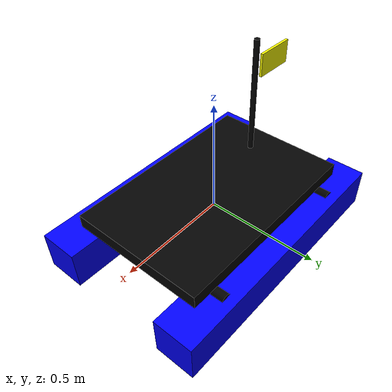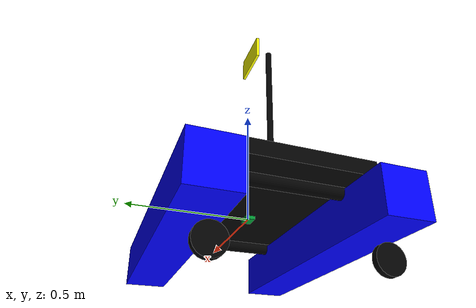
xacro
<?xml version="1.0"?>
<robot xmlns:xacro="http://www.ros.org/wiki/xacro" name="boat">

  <!-- Basic material colors for RViz visualization. -->
  <material name="blue">
    <color rgba="0.0 0.0 1.0 1.0"/>
  </material>
  <material name="black">
    <color rgba="0.01 0.01 0.01 1.0"/>
  </material>
  <material name="yellow">
    <color rgba="1.0 1.0 0.0 1.0"/>
  </material>
  <material name="grey">
    <color rgba="0.45 0.45 0.45 1.0"/>
  </material>
  <material name="sensor_green">
    <color rgba="0.0 0.6 0.2 1.0"/>
  </material>

  <link name="base_link">
    <inertial>
      <origin xyz="-0.05 0 -0.15" rpy="0 0 0"/>
      <mass value="30.0"/>
      <inertia ixx="2.42369" ixy="0.0" ixz="0.0"
               iyy="3.9235025" iyz="0.0"
               izz="5.6403125"/>
    </inertial>

    <visual name="port_hull_visual">
      <origin xyz="0 0.315 -0.08" rpy="0 0 0"/>
      <geometry>
        <box size="1.20 0.18 0.18"/>
      </geometry>
      <material name="blue"/>
    </visual>
    <visual name="stbd_hull_visual">
      <origin xyz="0 -0.315 -0.08" rpy="0 0 0"/>
      <geometry>
        <box size="1.20 0.18 0.18"/>
      </geometry>
      <material name="blue"/>
    </visual>
    <visual name="deck_visual">
      <origin xyz="0 0 0.06" rpy="0 0 0"/>
      <geometry>
        <box size="0.95 0.62 0.06"/>
      </geometry>
      <material name="black"/>
    </visual>
    <visual name="fore_crosstube_visual">
      <origin xyz="0.36 0 0.00" rpy="1.57079632679 0 0"/>
      <geometry>
        <cylinder radius="0.025" length="0.72"/>
      </geometry>
      <material name="black"/>
    </visual>
    <visual name="aft_crosstube_visual">
      <origin xyz="-0.36 0 0.00" rpy="1.57079632679 0 0"/>
      <geometry>
        <cylinder radius="0.025" length="0.72"/>
      </geometry>
      <material name="black"/>
    </visual>
    <visual name="antenna_visual">
      <origin xyz="-0.25 0 0.42" rpy="0 0 0"/>
      <geometry>
        <cylinder radius="0.012" length="0.50"/>
      </geometry>
      <material name="black"/>
    </visual>
    <visual name="flag_visual">
      <origin xyz="-0.25 0.08 0.62" rpy="0 0 0"/>
      <geometry>
        <box size="0.16 0.01 0.09"/>
      </geometry>
      <material name="yellow"/>
    </visual>

    <!-- Conservative primitive collisions for early RViz/simulation checks. -->
    <collision name="port_hull_collision">
      <origin xyz="0 0.315 -0.08" rpy="0 0 0"/>
      <geometry>
        <box size="1.20 0.18 0.18"/>
      </geometry>
    </collision>
    <collision name="stbd_hull_collision">
      <origin xyz="0 -0.315 -0.08" rpy="0 0 0"/>
      <geometry>
        <box size="1.20 0.18 0.18"/>
      </geometry>
    </collision>
    <collision name="deck_collision">
      <origin xyz="0 0 0.06" rpy="0 0 0"/>
      <geometry>
        <box size="0.95 0.62 0.06"/>
      </geometry>
    </collision>
  </link>

  <!--
    Port propeller link.
    Original SDF link pose: -0.488 0.295 -0.272 -90 0 90 degrees.
    Original SDF joint: motor_port_joint, revolute, axis 0 0 -1, damping 0.02.
  -->
  <link name="motor_port_link">
    <inertial>
      <origin xyz="0 0 0" rpy="0 0 0"/>
      <mass value="0.2"/>
      <inertia ixx="0.1" ixy="0.0" ixz="0.0"
               iyy="0.1" iyz="0.0"
               izz="0.1"/>
    </inertial>
    <visual name="port_prop_visual">
      <origin xyz="0 0 0" rpy="0 0 0"/>
      <geometry>
        <cylinder radius="0.056" length="0.025"/>
      </geometry>
      <material name="black"/>
    </visual>
    <collision name="port_prop_collision">
      <origin xyz="0 0 0" rpy="0 0 0"/>
      <geometry>
        <cylinder radius="0.056" length="0.025"/>
      </geometry>
    </collision>
  </link>

  <joint name="motor_port_joint" type="fixed">
    <parent link="base_link"/>
    <child link="motor_port_link"/>
    <origin xyz="-0.488 0.295 -0.272" rpy="-1.57079632679 0 1.57079632679"/>
    <axis xyz="0 0 -1"/>
    <dynamics damping="0.02" friction="0.0"/>
  </joint>

  <!--
    Starboard propeller link.
    Original SDF link pose: -0.488 -0.295 -0.272 -90 0 90 degrees.
    Original SDF joint: motor_stbd_joint, revolute, axis 0 0 -1, damping 0.02.
  -->
  <link name="motor_stbd_link">
    <inertial>
      <origin xyz="0 0 0" rpy="0 0 0"/>
      <mass value="0.2"/>
      <inertia ixx="0.1" ixy="0.0" ixz="0.0"
               iyy="0.1" iyz="0.0"
               izz="0.1"/>
    </inertial>
    <visual name="stbd_prop_visual">
      <origin xyz="0 0 0" rpy="0 0 0"/>
      <geometry>
        <cylinder radius="0.056" length="0.025"/>
      </geometry>
      <material name="black"/>
    </visual>
    <collision name="stbd_prop_collision">
      <origin xyz="0 0 0" rpy="0 0 0"/>
      <geometry>
        <cylinder radius="0.056" length="0.025"/>
      </geometry>
    </collision>
  </link>

  <joint name="motor_stbd_joint" type="fixed">
    <parent link="base_link"/>
    <child link="motor_stbd_link"/>
    <origin xyz="-0.488 -0.295 -0.272" rpy="-1.57079632679 0 1.57079632679"/>
    <axis xyz="0 0 -1"/>
    <dynamics damping="0.02" friction="0.0"/>
  </joint>

  <link name="imu_link">
    <inertial>
      <origin xyz="0 0 0" rpy="0 0 0"/>
      <mass value="0.1"/>
      <inertia ixx="0.0001" ixy="0.0" ixz="0.0"
               iyy="0.0001" iyz="0.0"
               izz="0.0001"/>
    </inertial>
    <visual name="imu_visual">
      <origin xyz="0 0 0" rpy="0 0 0"/>
      <geometry>
        <box size="0.06 0.04 0.015"/>
      </geometry>
      <material name="sensor_green"/>
    </visual>
  </link>

  <joint name="imu_joint" type="fixed">
    <parent link="base_link"/>
    <child link="imu_link"/>
    <origin xyz="0 0 0" rpy="3.14159265359 0 0"/>
  </joint>

  <link name="gps_link">
    <inertial>
      <origin xyz="0 0 0" rpy="0 0 0"/>
      <mass value="0.1"/>
      <inertia ixx="0.0001" ixy="0.0" ixz="0.0"
               iyy="0.0001" iyz="0.0"
               izz="0.0001"/>
    </inertial>
    <visual name="gps_visual">
      <origin xyz="0 0 0" rpy="0 0 0"/>
      <geometry>
        <cylinder radius="0.035" length="0.018"/>
      </geometry>
      <material name="grey"/>
    </visual>
  </link>

  <joint name="gps_joint" type="fixed">
    <parent link="base_link"/>
    <child link="gps_link"/>
    <origin xyz="0 0 0.05" rpy="0 0 0"/>
  </joint>

  <!-- Convenience placeholder frames for RobotX payload development. Adjust positions
       when the actual sensor mounts are finalized. -->
  <link name="compass_link"/>
  <joint name="compass_joint" type="fixed">
    <parent link="base_link"/>
    <child link="compass_link"/>
    <origin xyz="0 0 0.08" rpy="0 0 0"/>
  </joint>

  <link name="camera_link"/>
  <joint name="camera_joint" type="fixed">
    <parent link="base_link"/>
    <child link="camera_link"/>
    <origin xyz="0.40 0 0.35" rpy="0 0 0"/>
  </joint>

  <link name="lidar_link"/>
  <joint name="lidar_joint" type="fixed">
    <parent link="base_link"/>
    <child link="lidar_link"/>
    <origin xyz="0.325 0 0.084" rpy="0 0 0"/>
  </joint>

  <link name="sonar_link"/>
  <joint name="sonar_joint" type="fixed">
    <parent link="base_link"/>
    <child link="sonar_link"/>
    <origin xyz="0.15 0 -0.20" rpy="0 0 0"/>
  </joint>

</robot>
